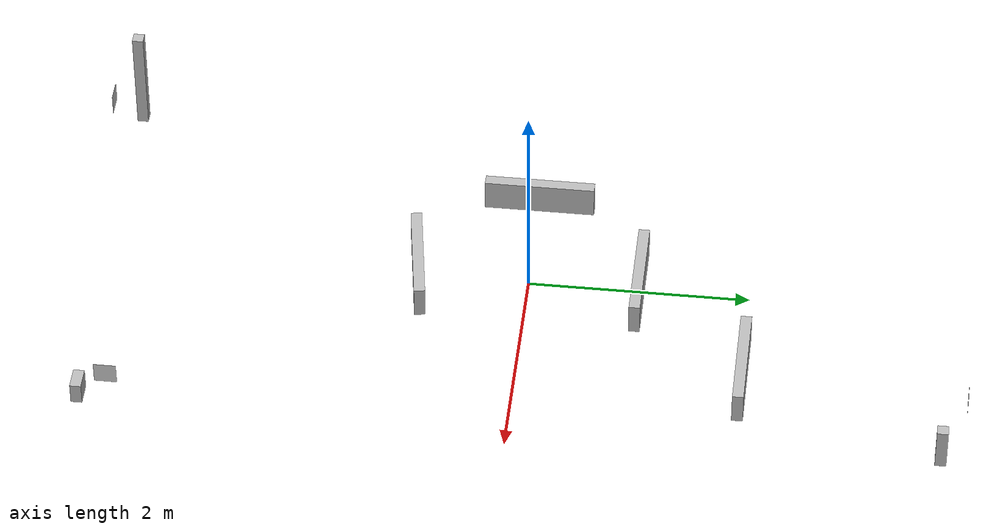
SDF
<sdf version="1.8">
 <world name="arise_lab">
  <gravity>0 0 0</gravity>
  <physics name="1ms" type="ignored">
   <max_step_size>0.001</max_step_size>
   <real_time_factor>1.0</real_time_factor>
  </physics>
  <plugin filename="gz-sim-physics-system" name="gz::sim::systems::Physics"/>
  <plugin filename="gz-sim-user-commands-system" name="gz::sim::systems::UserCommands"/>
  <plugin filename="gz-sim-scene-broadcaster-system" name="gz::sim::systems::SceneBroadcaster"/>
  <plugin filename="gz-sim-contact-system" name="gz::sim::systems::Contact"/>
  <plugin filename="gz-sim-sensors-system" name="gz::sim::systems::Sensors">
   <render_engine>ogre2</render_engine>
  </plugin>
  <light type="directional" name="lamp_1">
   <pose>0 0 10 0 0 0</pose>
   <diffuse>0.8 0.8 0.8 1</diffuse>
   <specular>0.2 0.2 0.2 1</specular>
   <attenuation>
    <range>1000</range>
    <constant>0.9</constant>
    <linear>0.01</linear>
    <quadratic>0.001</quadratic>
   </attenuation>
   <direction>0 0 -1</direction>
  </light>
  <model name="box_model_1">
   <pose>0 1 0.15 0 0 0</pose>
   <link name="box_link">
    <visual name="box_visual"><geometry><box><size>1 .1 .3</size></box></geometry></visual>
    <collision name="box_visual"><geometry><box><size>1 .1 .3</size></box></geometry></collision>
   </link>
  </model>
  <model name="box_model_2">
   <pose>0 -1 0.15 0 0 0.15</pose>
   <link name="box_link">
    <visual name="box_visual"><geometry><box><size>1 .1 .3</size></box></geometry></visual>
    <collision name="box_visual"><geometry><box><size>1 .1 .3</size></box></geometry></collision>
   </link>
  </model>
  <model name="box_model_3">
   <pose>-1 0 0.15 0 0 0</pose>
   <link name="box_link">
    <visual name="box_visual"><geometry><box><size>.1 1 .3</size></box></geometry></visual>
    <collision name="box_visual"><geometry><box><size>.1 1 .3</size></box></geometry></collision>
   </link>
  </model>
  <model name="box_model_4">
   <pose>1 2 .15 0 0 0</pose>
   <link name="box_link">
    <visual name="box_visual"><geometry><box><size>1 .1 .3</size></box></geometry></visual>
    <collision name="box_visual"><geometry><box><size>1 .1 .3</size></box></geometry></collision>
   </link>
  </model>
  <model name="landmark_1">
   <pose>1.8 3.8 .2 0 0 0</pose>
   <link name="box_link">
    <visual name="box_visual"><geometry><box><size>.1 .1 .4</size></box></geometry></visual>
    <collision name="box_visual"><geometry><box><size>.1 .1 .4</size></box></geometry></collision>
   </link>
  </model>
  <model name="landmark_2">
   <pose>-1.8 -3.8 .5 0 0 0</pose>
   <link name="box_link">
    <visual name="box_visual"><geometry><box><size>.1 .1 1</size></box></geometry></visual>
    <collision name="box_visual"><geometry><box><size>.1 .1 1</size></box></geometry></collision>
   </link>
  </model>
  <model name="landmark_3">
   <pose>1.8 -3.8 .1 0 0 0</pose>
   <link name="box_link">
    <visual name="box_visual"><geometry><box><size>.2 .1 .2</size></box></geometry></visual>
    <collision name="box_visual"><geometry><box><size>.2 .1 .2</size></box></geometry></collision>
   </link>
  </model>
  <model name="QR_0">
   <link name="QR_0">
    <visual name="QR_0">
     <pose>1.5 4 0.5 0 0 0</pose>
     <geometry><plane><normal>0 1 0</normal><size>0.2 0.2</size></plane></geometry>
     <material>
      <double_sided>true</double_sided>
      <ambient>1 1 1 1</ambient>
      <diffuse>0.8 0.8 0.8 1</diffuse>
      <specular>1 0.8 0.8 1</specular>
      <pbr>
       <metal><albedo_map>model://meshes/0.png</albedo_map><normal_map>model://meshes/0.png</normal_map></metal>
      </pbr>
     </material>
    </visual>
   </link>
   <link name="QR_1">
    <visual name="QR_1">
     <pose>-1.5 -4 0.5 0 0 0</pose>
     <geometry><plane><normal>0 1 0</normal><size>0.2 0.2</size></plane></geometry>
     <material>
      <double_sided>true</double_sided>
      <ambient>1 1 1 1</ambient>
      <diffuse>0.8 0.8 0.8 1</diffuse>
      <specular>1 0.8 0.8 1</specular>
      <pbr>
       <metal><albedo_map>model://meshes/1.png</albedo_map><normal_map>model://meshes/1.png</normal_map></metal>
      </pbr>
     </material>
    </visual>
   </link>
   <link name="QR_2">
    <visual name="QR_2">
     <pose>2 -3.5 0.5 0 0 0</pose>
     <geometry><plane><normal>1 0 0</normal><size>0.2 0.2</size></plane></geometry>
     <material>
      <double_sided>true</double_sided>
      <ambient>1 1 1 1</ambient>
      <diffuse>0.8 0.8 0.8 1</diffuse>
      <specular>1 0.8 0.8 1</specular>
      <pbr>
       <metal><albedo_map>model://meshes/1.png</albedo_map><normal_map>model://meshes/1.png</normal_map></metal>
      </pbr>
     </material>
    </visual>
   </link>
  </model>
 </world>
</sdf>
